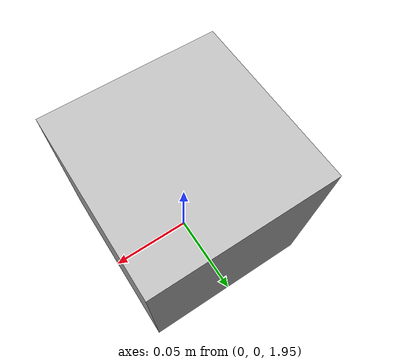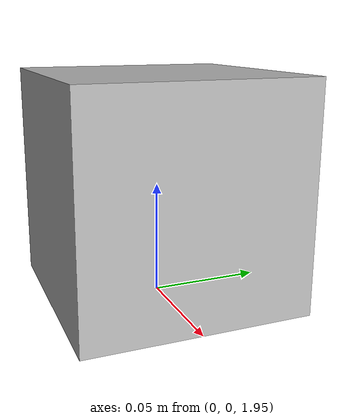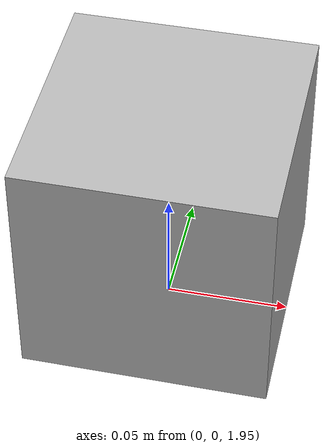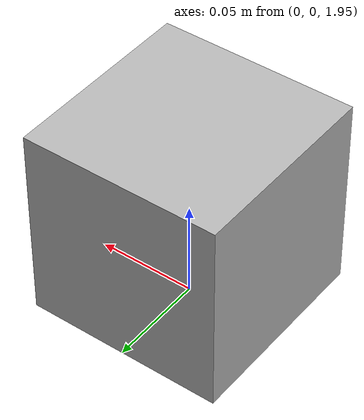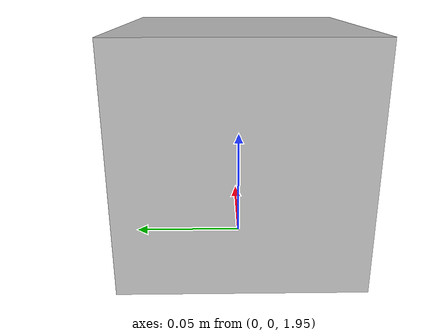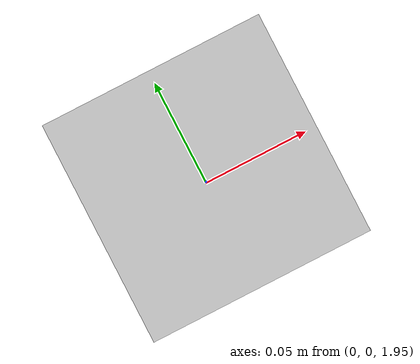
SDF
<?xml version="1.0" ?>
<sdf version="1.6">
  <world name="non_link_component_world">
    <plugin
      filename="gz-sim-apply-link-wrench-system"
      name="gz::sim::systems::ApplyLinkWrench">
    </plugin>

    <gravity>0 0 -10</gravity>
    <physics name="1ms" type="ode">
      <max_step_size>0.001</max_step_size>
      <real_time_factor>1</real_time_factor>
    </physics>
    <plugin
      filename="gz-sim-physics-system"
      name="gz::sim::systems::Physics">
    </plugin>
    <plugin
      filename="gz-sim-scene-broadcaster-system"
      name="gz::sim::systems::SceneBroadcaster">
    </plugin>

    <model name="ground_plane">
      <static>true</static>
      <link name="link">
        <collision name="collision">
          <geometry>
            <plane>
              <normal>0 0 1</normal>
              <size>100 100</size>
            </plane>
          </geometry>
        </collision>
        <visual name="visual">
          <geometry>
            <plane>
              <normal>0 0 1</normal>
              <size>100 100</size>
            </plane>
          </geometry>
          <material>
            <ambient>0.8 0.8 0.8 1</ambient>
            <diffuse>0.8 0.8 0.8 1</diffuse>
            <specular>0.8 0.8 0.8 1</specular>
          </material>
        </visual>
      </link>
    </model>

    <model name="model_with_non_link_entity">
      <pose>0 0 2 0 0 0</pose>
      <link name="link">
        <inertial>
          <mass>0.1</mass>
          <inertia>
            <ixx>0.000166667</ixx>
            <iyy>0.000166667</iyy>
            <izz>0.000166667</izz>
          </inertia>
        </inertial>
        <collision name="collision">
          <geometry>
            <box>
              <size>0.1 0.1 0.1</size>
            </box>
          </geometry>
        </collision>
        <collision name="collision_with_offset">
          <!-- rotate collision for testing purposes -->
          <pose>0.1 0.2 0 0 1.570796327 0</pose>
          <geometry>
            <box>
              <size>0.01 0.01 0.01</size>
            </box>
          </geometry>
        </collision>
        <visual name="visual">
          <geometry>
            <box>
              <size>0.1 0.1 0.1</size>
            </box>
          </geometry>
        </visual>
      </link>
    </model>

  </world>
</sdf>
